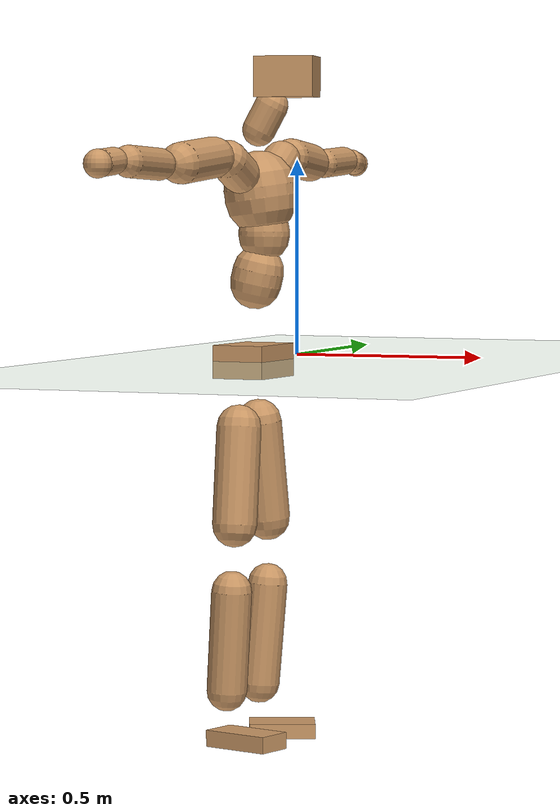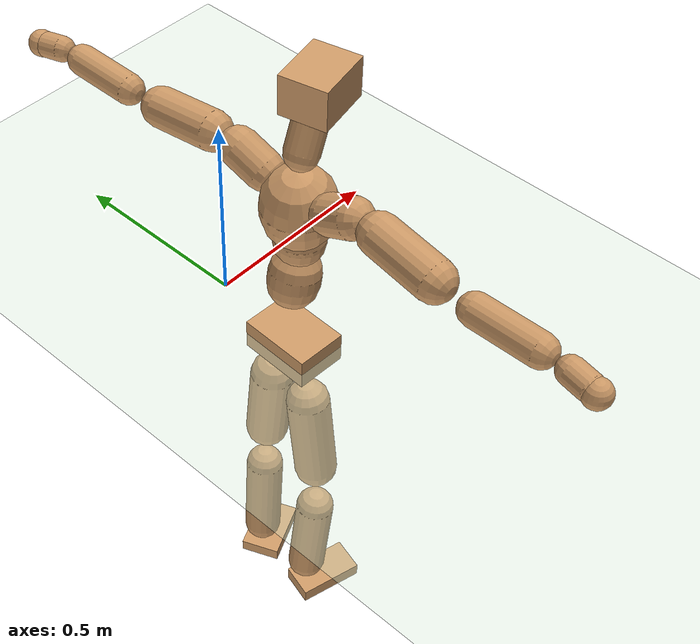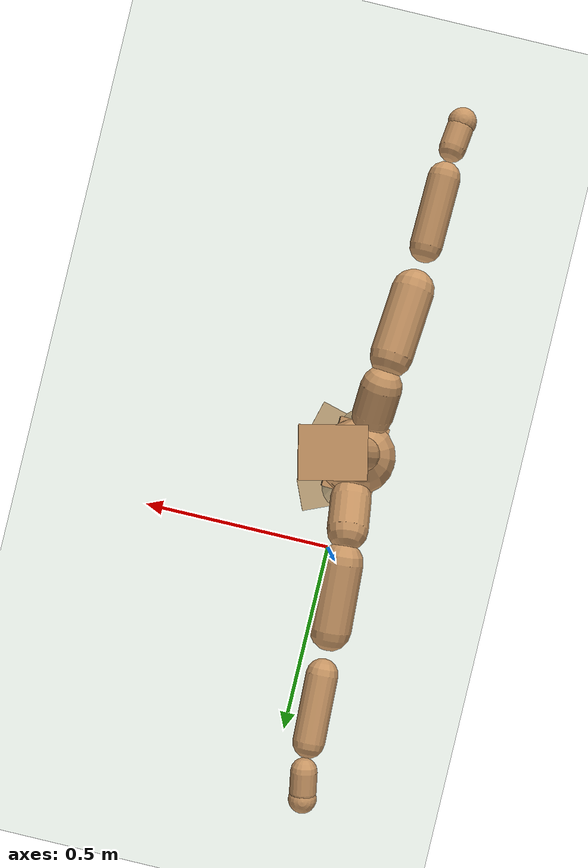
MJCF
<mujoco model="humanoid">
  <compiler coordinate="local" angle="radian"/>
  <default>
    <joint damping="0.0" armature="0.01" stiffness="0.0" limited="true"/>
    <geom conaffinity="1" condim="3" contype="7" margin="0.001" rgba="0.8 0.6 .4 1"/>
  </default>
  <asset>
    <texture type="skybox" builtin="gradient" rgb1=".4 .5 .6" rgb2="0 0 0" width="100" height="100"/>
    <texture builtin="flat" height="1278" mark="cross" markrgb="1 1 1" name="texgeom" random="0.01" rgb1="0.8 0.6 0.4" rgb2="0.8 0.6 0.4" type="cube" width="127"/>
    <texture builtin="checker" height="100" name="texplane" rgb1="0 0 0" rgb2="0.8 0.8 0.8" type="2d" width="100"/>
    <material name="MatPlane" reflectance="0.5" shininess="1" specular="1" texrepeat="60 60" texture="texplane"/>
    <material name="geom" texture="texgeom" texuniform="true"/>
  </asset>
  <worldbody>
    <light cutoff="100" diffuse="1 1 1" dir="-0 0 -1.3" directional="true" exponent="1" pos="0 0 1.3" specular=".1 .1 .1"/>
    <geom conaffinity="1" condim="3" name="floor" pos="0 0 0" rgba="0.8 0.9 0.8 1" size="100 100 .2" type="plane" material="MatPlane"/>
    <body name="Pelvis" pos="-0.0027 -0.2526 0.0045">
      <freejoint name="Pelvis"/>
      <geom type="box" contype="1" conaffinity="1" density="500" pos="-0.0128 0.0005 -0.0085" size="0.0674 0.0963 0.0416" quat="0.9998 0.0000 0.0000 -0.0194" name="Pelvis"/>
      <body name="L_Hip" pos="-0.0272 0.0511 -0.0834">
        <joint name="L_Hip_x" type="hinge" pos="0 0 0" axis="1 0 0" stiffness="800" damping="80" armature="0.02" range="-180.0000 180.0000"/>
        <joint name="L_Hip_y" type="hinge" pos="0 0 0" axis="0 1 0" stiffness="800" damping="80" armature="0.02" range="-180.0000 180.0000"/>
        <joint name="L_Hip_z" type="hinge" pos="0 0 0" axis="0 0 1" stiffness="800" damping="80" armature="0.02" range="-180.0000 180.0000"/>
        <geom type="capsule" contype="1" conaffinity="1" density="500" fromto="0.0032 0.0106 -0.0828 0.0128 0.0425 -0.3312" size="0.0571" name="L_Hip"/>
        <body name="L_Knee" pos="0.016 0.0531 -0.414">
          <joint name="L_Knee_x" type="hinge" pos="0 0 0" axis="1 0 0" stiffness="800" damping="80" armature="0.02" range="-180.0000 180.0000"/>
          <joint name="L_Knee_y" type="hinge" pos="0 0 0" axis="0 1 0" stiffness="800" damping="80" armature="0.02" range="-180.0000 180.0000"/>
          <joint name="L_Knee_z" type="hinge" pos="0 0 0" axis="0 0 1" stiffness="800" damping="80" armature="0.02" range="-180.0000 180.0000"/>
          <geom type="capsule" contype="1" conaffinity="1" density="500" fromto="-0.0066 -0.0022 -0.0861 -0.0262 -0.0089 -0.3445" size="0.0505" name="L_Knee"/>
          <body name="L_Ankle" pos="-0.0328 -0.0111 -0.4306">
            <joint name="L_Ankle_x" type="hinge" pos="0 0 0" axis="1 0 0" stiffness="800" damping="80" armature="0.02" range="-180.0000 180.0000"/>
            <joint name="L_Ankle_y" type="hinge" pos="0 0 0" axis="0 1 0" stiffness="800" damping="80" armature="0.02" range="-180.0000 180.0000"/>
            <joint name="L_Ankle_z" type="hinge" pos="0 0 0" axis="0 0 1" stiffness="800" damping="80" armature="0.02" range="-180.0000 180.0000"/>
            <geom type="box" contype="1" conaffinity="1" density="500" pos="0.0590 0.0257 -0.0311" size="0.0839 0.0548 0.0189" quat="0.9790 0.0000 0.0000 0.2039" name="L_Ankle"/>
            <body name="L_Toe" pos="0.118 0.0514 -0.0622">
              <joint name="L_Toe_x" type="hinge" pos="0 0 0" axis="1 0 0" stiffness="500" damping="50" armature="0.02" range="-180.0000 180.0000"/>
              <joint name="L_Toe_y" type="hinge" pos="0 0 0" axis="0 1 0" stiffness="500" damping="50" armature="0.02" range="-180.0000 180.0000"/>
              <joint name="L_Toe_z" type="hinge" pos="0 0 0" axis="0 0 1" stiffness="500" damping="50" armature="0.02" range="-180.0000 180.0000"/>
              <geom type="box" contype="1" conaffinity="1" density="500" pos="0.0000 0.0000 0.0340" size="0.001 0.0026 0.0011" quat="0.9782 0.0000 0.0000 0.2078" name="L_Toe"/>
            </body>
          </body>
        </body>
      </body>
      <body name="R_Hip" pos="-0.0263 -0.052 -0.0905">
        <joint name="R_Hip_x" type="hinge" pos="0 0 0" axis="1 0 0" stiffness="800" damping="80" armature="0.02" range="-180.0000 180.0000"/>
        <joint name="R_Hip_y" type="hinge" pos="0 0 0" axis="0 1 0" stiffness="800" damping="80" armature="0.02" range="-180.0000 180.0000"/>
        <joint name="R_Hip_z" type="hinge" pos="0 0 0" axis="0 0 1" stiffness="800" damping="80" armature="0.02" range="-180.0000 180.0000"/>
        <geom type="capsule" contype="1" conaffinity="1" density="500" fromto="0.0005 -0.0103 -0.0812 0.0018 -0.0414 -0.3247" size="0.056" name="R_Hip"/>
        <body name="R_Knee" pos="0.0023 -0.0517 -0.4058">
          <joint name="R_Knee_x" type="hinge" pos="0 0 0" axis="1 0 0" stiffness="800" damping="80" armature="0.02" range="-180.0000 180.0000"/>
          <joint name="R_Knee_y" type="hinge" pos="0 0 0" axis="0 1 0" stiffness="800" damping="80" armature="0.02" range="-180.0000 180.0000"/>
          <joint name="R_Knee_z" type="hinge" pos="0 0 0" axis="0 0 1" stiffness="800" damping="80" armature="0.02" range="-180.0000 180.0000"/>
          <geom type="capsule" contype="1" conaffinity="1" density="500" fromto="-0.0061 0.0037 -0.0848 -0.0243 0.0147 -0.3393" size="0.0508" name="R_Knee"/>
          <body name="R_Ankle" pos="-0.0304 0.0184 -0.4241">
            <joint name="R_Ankle_x" type="hinge" pos="0 0 0" axis="1 0 0" stiffness="800" damping="80" armature="0.02" range="-180.0000 180.0000"/>
            <joint name="R_Ankle_y" type="hinge" pos="0 0 0" axis="0 1 0" stiffness="800" damping="80" armature="0.02" range="-180.0000 180.0000"/>
            <joint name="R_Ankle_z" type="hinge" pos="0 0 0" axis="0 0 1" stiffness="800" damping="80" armature="0.02" range="-180.0000 180.0000"/>
            <geom type="box" contype="1" conaffinity="1" density="500" pos="0.0641 -0.0170 -0.0319" size="0.0896 0.0479 0.0209" quat="0.9916 0.0000 0.0000 -0.1291" name="R_Ankle"/>
            <body name="R_Toe" pos="0.1283 -0.034 -0.0639">
              <joint name="R_Toe_x" type="hinge" pos="0 0 0" axis="1 0 0" stiffness="500" damping="50" armature="0.02" range="-180.0000 180.0000"/>
              <joint name="R_Toe_y" type="hinge" pos="0 0 0" axis="0 1 0" stiffness="500" damping="50" armature="0.02" range="-180.0000 180.0000"/>
              <joint name="R_Toe_z" type="hinge" pos="0 0 0" axis="0 0 1" stiffness="500" damping="50" armature="0.02" range="-180.0000 180.0000"/>
              <geom type="box" contype="1" conaffinity="1" density="500" pos="0.0000 0.0000 0.0348" size="0.0009 0.0023 0.0012" quat="0.9928 0.0000 0.0000 -0.1201" name="R_Toe"/>
            </body>
          </body>
        </body>
      </body>
      <body name="Torso" pos="-0.0233 0.0038 0.1228">
        <joint name="Torso_x" type="hinge" pos="0 0 0" axis="1 0 0" stiffness="1000" damping="100" armature="0.02" range="-180.0000 180.0000"/>
        <joint name="Torso_y" type="hinge" pos="0 0 0" axis="0 1 0" stiffness="1000" damping="100" armature="0.02" range="-180.0000 180.0000"/>
        <joint name="Torso_z" type="hinge" pos="0 0 0" axis="0 0 1" stiffness="1000" damping="100" armature="0.02" range="-180.0000 180.0000"/>
        <geom type="capsule" contype="1" conaffinity="1" density="500" fromto="0.0215 0.0032 0.0941 0.0143 0.0021 0.0628" size="0.0646" name="Torso"/>
        <body name="Spine" pos="0.0358 0.0054 0.1569">
          <joint name="Spine_x" type="hinge" pos="0 0 0" axis="1 0 0" stiffness="1000" damping="100" armature="0.02" range="-180.0000 180.0000"/>
          <joint name="Spine_y" type="hinge" pos="0 0 0" axis="0 1 0" stiffness="1000" damping="100" armature="0.02" range="-180.0000 180.0000"/>
          <joint name="Spine_z" type="hinge" pos="0 0 0" axis="0 0 1" stiffness="1000" damping="100" armature="0.02" range="-180.0000 180.0000"/>
          <geom type="capsule" contype="1" conaffinity="1" density="500" fromto="0.0009 -0.0008 0.0376 0.0006 -0.0005 0.0251" size="0.0643" name="Spine"/>
          <body name="Chest" pos="0.0015 -0.0014 0.0627">
            <joint name="Chest_x" type="hinge" pos="0 0 0" axis="1 0 0" stiffness="1000" damping="100" armature="0.02" range="-180.0000 180.0000"/>
            <joint name="Chest_y" type="hinge" pos="0 0 0" axis="0 1 0" stiffness="1000" damping="100" armature="0.02" range="-180.0000 180.0000"/>
            <joint name="Chest_z" type="hinge" pos="0 0 0" axis="0 0 1" stiffness="1000" damping="100" armature="0.02" range="-180.0000 180.0000"/>
            <geom type="capsule" contype="1" conaffinity="1" density="500" fromto="-0.0107 -0.0050 0.0849 -0.0071 -0.0033 0.0566" size="0.0913" name="Chest"/>
            <body name="Neck" pos="-0.0204 -0.0125 0.2072">
              <joint name="Neck_x" type="hinge" pos="0 0 0" axis="1 0 0" stiffness="500" damping="50" armature="0.02" range="-180.0000 180.0000"/>
              <joint name="Neck_y" type="hinge" pos="0 0 0" axis="0 1 0" stiffness="500" damping="50" armature="0.02" range="-180.0000 180.0000"/>
              <joint name="Neck_z" type="hinge" pos="0 0 0" axis="0 0 1" stiffness="500" damping="50" armature="0.02" range="-180.0000 180.0000"/>
              <geom type="capsule" contype="1" conaffinity="1" density="500" fromto="0.0106 0.0020 0.0201 0.0423 0.0082 0.0802" size="0.0419" name="Neck"/>
              <body name="Head" pos="0.0529 0.0102 0.1003">
                <joint name="Head_x" type="hinge" pos="0 0 0" axis="1 0 0" stiffness="500" damping="50" armature="0.02" range="-180.0000 180.0000"/>
                <joint name="Head_y" type="hinge" pos="0 0 0" axis="0 1 0" stiffness="500" damping="50" armature="0.02" range="-180.0000 180.0000"/>
                <joint name="Head_z" type="hinge" pos="0 0 0" axis="0 0 1" stiffness="500" damping="50" armature="0.02" range="-180.0000 180.0000"/>
                <geom type="box" contype="1" conaffinity="1" density="500" pos="0.0275 0.0061 0.0511" size="0.0744 0.0599 0.0506" quat="0.9940 0.0000 0.0000 0.1092" name="Head"/>
              </body>
            </body>
            <body name="L_Thorax" pos="-0.0136 0.0725 0.11">
              <joint name="L_Thorax_x" type="hinge" pos="0 0 0" axis="1 0 0" stiffness="500" damping="50" armature="0.02" range="-180.0000 180.0000"/>
              <joint name="L_Thorax_y" type="hinge" pos="0 0 0" axis="0 1 0" stiffness="500" damping="50" armature="0.02" range="-180.0000 180.0000"/>
              <joint name="L_Thorax_z" type="hinge" pos="0 0 0" axis="0 0 1" stiffness="500" damping="50" armature="0.02" range="-180.0000 180.0000"/>
              <geom type="capsule" contype="1" conaffinity="1" density="500" fromto="-0.0025 0.0236 0.0108 -0.0101 0.0943 0.0433" size="0.0489" name="L_Thorax"/>
              <body name="L_Shoulder" pos="-0.0126 0.1178 0.0541">
                <joint name="L_Shoulder_x" type="hinge" pos="0 0 0" axis="1 0 0" stiffness="500" damping="50" armature="0.02" range="-720.0000 720.0000"/>
                <joint name="L_Shoulder_y" type="hinge" pos="0 0 0" axis="0 1 0" stiffness="500" damping="50" armature="0.02" range="-720.0000 720.0000"/>
                <joint name="L_Shoulder_z" type="hinge" pos="0 0 0" axis="0 0 1" stiffness="500" damping="50" armature="0.02" range="-720.0000 720.0000"/>
                <geom type="capsule" contype="1" conaffinity="1" density="500" fromto="-0.0034 0.0532 -0.0043 -0.0136 0.2127 -0.0171" size="0.0492" name="L_Shoulder"/>
                <body name="L_Elbow" pos="-0.017 0.2659 -0.0213">
                  <joint name="L_Elbow_x" type="hinge" pos="0 0 0" axis="1 0 0" stiffness="500" damping="50" armature="0.02" range="-720.0000 720.0000"/>
                  <joint name="L_Elbow_y" type="hinge" pos="0 0 0" axis="0 1 0" stiffness="500" damping="50" armature="0.02" range="-720.0000 720.0000"/>
                  <joint name="L_Elbow_z" type="hinge" pos="0 0 0" axis="0 0 1" stiffness="500" damping="50" armature="0.02" range="-720.0000 720.0000"/>
                  <geom type="capsule" contype="1" conaffinity="1" density="500" fromto="-0.0020 0.0527 0.0025 -0.0079 0.2108 0.0102" size="0.038" name="L_Elbow"/>
                  <body name="L_Wrist" pos="-0.0099 0.2636 0.0127">
                    <joint name="L_Wrist_x" type="hinge" pos="0 0 0" axis="1 0 0" stiffness="300" damping="30" armature="0.02" range="-180.0000 180.0000"/>
                    <joint name="L_Wrist_y" type="hinge" pos="0 0 0" axis="0 1 0" stiffness="300" damping="30" armature="0.02" range="-180.0000 180.0000"/>
                    <joint name="L_Wrist_z" type="hinge" pos="0 0 0" axis="0 0 1" stiffness="300" damping="30" armature="0.02" range="-180.0000 180.0000"/>
                    <geom type="capsule" contype="1" conaffinity="1" density="500" fromto="-0.0030 0.0163 -0.0020 -0.0119 0.0651 -0.0081" size="0.0317" name="L_Wrist"/>
                    <body name="L_Hand" pos="-0.0149 0.0814 -0.0101">
                      <joint name="L_Hand_x" type="hinge" pos="0 0 0" axis="1 0 0" stiffness="300" damping="30" armature="0.02" range="-180.0000 180.0000"/>
                      <joint name="L_Hand_y" type="hinge" pos="0 0 0" axis="0 1 0" stiffness="300" damping="30" armature="0.02" range="-180.0000 180.0000"/>
                      <joint name="L_Hand_z" type="hinge" pos="0 0 0" axis="0 0 1" stiffness="300" damping="30" armature="0.02" range="-180.0000 180.0000"/>
                      <geom type="sphere" contype="1" conaffinity="1" density="500" size="0.0334" pos="0.0000 0.0000 0.0000" name="L_Hand"/>
                    </body>
                  </body>
                </body>
              </body>
            </body>
            <body name="R_Thorax" pos="-0.0194 -0.0849 0.1071">
              <joint name="R_Thorax_x" type="hinge" pos="0 0 0" axis="1 0 0" stiffness="500" damping="50" armature="0.02" range="-180.0000 180.0000"/>
              <joint name="R_Thorax_y" type="hinge" pos="0 0 0" axis="0 1 0" stiffness="500" damping="50" armature="0.02" range="-180.0000 180.0000"/>
              <joint name="R_Thorax_z" type="hinge" pos="0 0 0" axis="0 0 1" stiffness="500" damping="50" armature="0.02" range="-180.0000 180.0000"/>
              <geom type="capsule" contype="1" conaffinity="1" density="500" fromto="-0.0008 -0.0223 0.0110 -0.0032 -0.0891 0.0439" size="0.0494" name="R_Thorax"/>
              <body name="R_Shoulder" pos="-0.004 -0.1114 0.0549">
                <joint name="R_Shoulder_x" type="hinge" pos="0 0 0" axis="1 0 0" stiffness="500" damping="50" armature="0.02" range="-720.0000 720.0000"/>
                <joint name="R_Shoulder_y" type="hinge" pos="0 0 0" axis="0 1 0" stiffness="500" damping="50" armature="0.02" range="-720.0000 720.0000"/>
                <joint name="R_Shoulder_z" type="hinge" pos="0 0 0" axis="0 0 1" stiffness="500" damping="50" armature="0.02" range="-720.0000 720.0000"/>
                <geom type="capsule" contype="1" conaffinity="1" density="500" fromto="-0.0047 -0.0536 -0.0049 -0.0186 -0.2142 -0.0198" size="0.0508" name="R_Shoulder"/>
                <body name="R_Elbow" pos="-0.0233 -0.2678 -0.0247">
                  <joint name="R_Elbow_x" type="hinge" pos="0 0 0" axis="1 0 0" stiffness="500" damping="50" armature="0.02" range="-720.0000 720.0000"/>
                  <joint name="R_Elbow_y" type="hinge" pos="0 0 0" axis="0 1 0" stiffness="500" damping="50" armature="0.02" range="-720.0000 720.0000"/>
                  <joint name="R_Elbow_z" type="hinge" pos="0 0 0" axis="0 0 1" stiffness="500" damping="50" armature="0.02" range="-720.0000 720.0000"/>
                  <geom type="capsule" contype="1" conaffinity="1" density="500" fromto="-0.0011 -0.0545 0.0020 -0.0045 -0.2180 0.0081" size="0.0385" name="R_Elbow"/>
                  <body name="R_Wrist" pos="-0.0056 -0.2725 0.0102">
                    <joint name="R_Wrist_x" type="hinge" pos="0 0 0" axis="1 0 0" stiffness="300" damping="30" armature="0.02" range="-180.0000 180.0000"/>
                    <joint name="R_Wrist_y" type="hinge" pos="0 0 0" axis="0 1 0" stiffness="300" damping="30" armature="0.02" range="-180.0000 180.0000"/>
                    <joint name="R_Wrist_z" type="hinge" pos="0 0 0" axis="0 0 1" stiffness="300" damping="30" armature="0.02" range="-180.0000 180.0000"/>
                    <geom type="capsule" contype="1" conaffinity="1" density="500" fromto="-0.0020 -0.0167 -0.0016 -0.0080 -0.0669 -0.0062" size="0.032" name="R_Wrist"/>
                    <body name="R_Hand" pos="-0.0101 -0.0836 -0.0078">
                      <joint name="R_Hand_x" type="hinge" pos="0 0 0" axis="1 0 0" stiffness="300" damping="30" armature="0.02" range="-180.0000 180.0000"/>
                      <joint name="R_Hand_y" type="hinge" pos="0 0 0" axis="0 1 0" stiffness="300" damping="30" armature="0.02" range="-180.0000 180.0000"/>
                      <joint name="R_Hand_z" type="hinge" pos="0 0 0" axis="0 0 1" stiffness="300" damping="30" armature="0.02" range="-180.0000 180.0000"/>
                      <geom type="sphere" contype="1" conaffinity="1" density="500" size="0.0338" pos="0.0000 0.0000 0.0000" name="R_Hand"/>
                    </body>
                  </body>
                </body>
              </body>
            </body>
          </body>
        </body>
      </body>
    </body>
  </worldbody>
  <actuator>
    <motor name="L_Hip_x" joint="L_Hip_x" gear="500"/>
    <motor name="L_Hip_y" joint="L_Hip_y" gear="500"/>
    <motor name="L_Hip_z" joint="L_Hip_z" gear="500"/>
    <motor name="L_Knee_x" joint="L_Knee_x" gear="500"/>
    <motor name="L_Knee_y" joint="L_Knee_y" gear="500"/>
    <motor name="L_Knee_z" joint="L_Knee_z" gear="500"/>
    <motor name="L_Ankle_x" joint="L_Ankle_x" gear="500"/>
    <motor name="L_Ankle_y" joint="L_Ankle_y" gear="500"/>
    <motor name="L_Ankle_z" joint="L_Ankle_z" gear="500"/>
    <motor name="L_Toe_x" joint="L_Toe_x" gear="500"/>
    <motor name="L_Toe_y" joint="L_Toe_y" gear="500"/>
    <motor name="L_Toe_z" joint="L_Toe_z" gear="500"/>
    <motor name="R_Hip_x" joint="R_Hip_x" gear="500"/>
    <motor name="R_Hip_y" joint="R_Hip_y" gear="500"/>
    <motor name="R_Hip_z" joint="R_Hip_z" gear="500"/>
    <motor name="R_Knee_x" joint="R_Knee_x" gear="500"/>
    <motor name="R_Knee_y" joint="R_Knee_y" gear="500"/>
    <motor name="R_Knee_z" joint="R_Knee_z" gear="500"/>
    <motor name="R_Ankle_x" joint="R_Ankle_x" gear="500"/>
    <motor name="R_Ankle_y" joint="R_Ankle_y" gear="500"/>
    <motor name="R_Ankle_z" joint="R_Ankle_z" gear="500"/>
    <motor name="R_Toe_x" joint="R_Toe_x" gear="500"/>
    <motor name="R_Toe_y" joint="R_Toe_y" gear="500"/>
    <motor name="R_Toe_z" joint="R_Toe_z" gear="500"/>
    <motor name="Torso_x" joint="Torso_x" gear="500"/>
    <motor name="Torso_y" joint="Torso_y" gear="500"/>
    <motor name="Torso_z" joint="Torso_z" gear="500"/>
    <motor name="Spine_x" joint="Spine_x" gear="500"/>
    <motor name="Spine_y" joint="Spine_y" gear="500"/>
    <motor name="Spine_z" joint="Spine_z" gear="500"/>
    <motor name="Chest_x" joint="Chest_x" gear="500"/>
    <motor name="Chest_y" joint="Chest_y" gear="500"/>
    <motor name="Chest_z" joint="Chest_z" gear="500"/>
    <motor name="Neck_x" joint="Neck_x" gear="500"/>
    <motor name="Neck_y" joint="Neck_y" gear="500"/>
    <motor name="Neck_z" joint="Neck_z" gear="500"/>
    <motor name="Head_x" joint="Head_x" gear="500"/>
    <motor name="Head_y" joint="Head_y" gear="500"/>
    <motor name="Head_z" joint="Head_z" gear="500"/>
    <motor name="L_Thorax_x" joint="L_Thorax_x" gear="500"/>
    <motor name="L_Thorax_y" joint="L_Thorax_y" gear="500"/>
    <motor name="L_Thorax_z" joint="L_Thorax_z" gear="500"/>
    <motor name="L_Shoulder_x" joint="L_Shoulder_x" gear="500"/>
    <motor name="L_Shoulder_y" joint="L_Shoulder_y" gear="500"/>
    <motor name="L_Shoulder_z" joint="L_Shoulder_z" gear="500"/>
    <motor name="L_Elbow_x" joint="L_Elbow_x" gear="500"/>
    <motor name="L_Elbow_y" joint="L_Elbow_y" gear="500"/>
    <motor name="L_Elbow_z" joint="L_Elbow_z" gear="500"/>
    <motor name="L_Wrist_x" joint="L_Wrist_x" gear="500"/>
    <motor name="L_Wrist_y" joint="L_Wrist_y" gear="500"/>
    <motor name="L_Wrist_z" joint="L_Wrist_z" gear="500"/>
    <motor name="L_Hand_x" joint="L_Hand_x" gear="500"/>
    <motor name="L_Hand_y" joint="L_Hand_y" gear="500"/>
    <motor name="L_Hand_z" joint="L_Hand_z" gear="500"/>
    <motor name="R_Thorax_x" joint="R_Thorax_x" gear="500"/>
    <motor name="R_Thorax_y" joint="R_Thorax_y" gear="500"/>
    <motor name="R_Thorax_z" joint="R_Thorax_z" gear="500"/>
    <motor name="R_Shoulder_x" joint="R_Shoulder_x" gear="500"/>
    <motor name="R_Shoulder_y" joint="R_Shoulder_y" gear="500"/>
    <motor name="R_Shoulder_z" joint="R_Shoulder_z" gear="500"/>
    <motor name="R_Elbow_x" joint="R_Elbow_x" gear="500"/>
    <motor name="R_Elbow_y" joint="R_Elbow_y" gear="500"/>
    <motor name="R_Elbow_z" joint="R_Elbow_z" gear="500"/>
    <motor name="R_Wrist_x" joint="R_Wrist_x" gear="500"/>
    <motor name="R_Wrist_y" joint="R_Wrist_y" gear="500"/>
    <motor name="R_Wrist_z" joint="R_Wrist_z" gear="500"/>
    <motor name="R_Hand_x" joint="R_Hand_x" gear="500"/>
    <motor name="R_Hand_y" joint="R_Hand_y" gear="500"/>
    <motor name="R_Hand_z" joint="R_Hand_z" gear="500"/>
  </actuator>
  <contact>
    <exclude body1="Torso" body2="Chest"/>
    <exclude body1="Head" body2="Chest"/>
    <exclude body1="R_Knee" body2="R_Toe"/>
    <exclude body1="R_Knee" body2="L_Ankle"/>
    <exclude body1="R_Knee" body2="L_Toe"/>
    <exclude body1="L_Knee" body2="L_Toe"/>
    <exclude body1="L_Knee" body2="R_Ankle"/>
    <exclude body1="L_Knee" body2="R_Toe"/>
    <exclude body1="L_Shoulder" body2="Chest"/>
    <exclude body1="R_Shoulder" body2="Chest"/>
  </contact>
  <sensor/>
  <size njmax="700" nconmax="700"/>
</mujoco>
